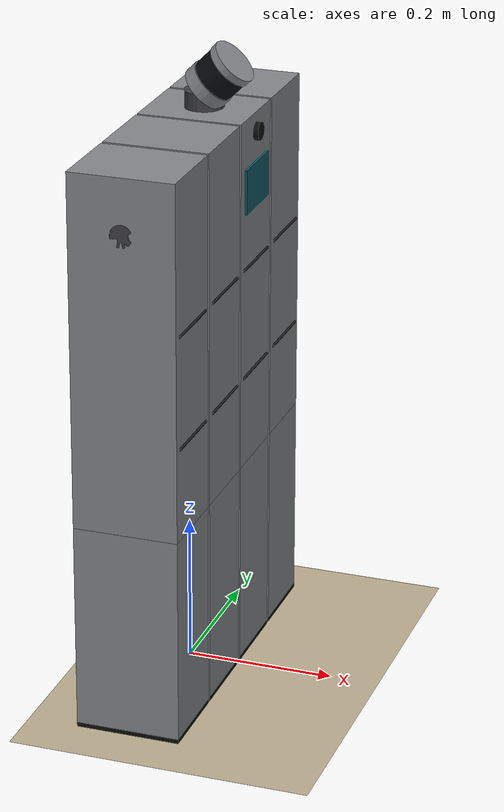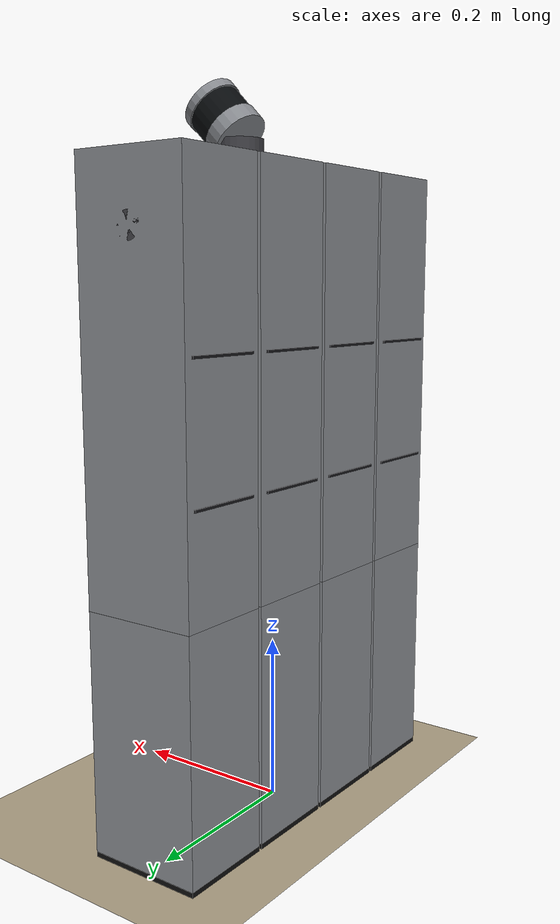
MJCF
<?xml version="1.0" ?>
<mujoco model="tars">
  <compiler angle="radian" autolimits="true"/>
  <option timestep="0.00141421" integrator="implicitfast"/>
  <visual>
    <global offwidth="1920" offheight="1440" azimuth="150" elevation="-15"/>
    <quality shadowsize="8192" offsamples="8"/>
    <headlight ambient="0.15 0.15 0.15" diffuse="0.3 0.3 0.3" specular="0.1 0.1 0.1"/>
    <map znear="0.01" haze="0.05"/>
  </visual>
  <asset>
    <texture type="skybox" builtin="gradient" rgb1="0.55 0.62 0.72" rgb2="0.08 0.09 0.12" width="512" height="512"/>
    <texture name="floor" type="2d" builtin="checker" rgb1="0.78 0.72 0.6" rgb2="0.7 0.64 0.53" width="512" height="512" mark="edge" markrgb="0.6 0.55 0.45"/>
    <material name="floor" texture="floor" texrepeat="8 8" reflectance="0.05"/>
    <material name="aluminum" rgba="0.52 0.53 0.55 1" specular="0.6" shininess="0.7" reflectance="0.15"/>
    <material name="sleeve" rgba="0.45 0.46 0.48 1" specular="0.5" shininess="0.6" reflectance="0.1"/>
    <material name="seam" rgba="0.08 0.08 0.09 1" specular="0.2" shininess="0.2" reflectance="0"/>
    <material name="rubber" rgba="0.05 0.05 0.05 1" specular="0.2" shininess="0.2" reflectance="0"/>
    <material name="display" rgba="0.05 0.35 0.4 1" specular="0.9" shininess="0.9" reflectance="0.3" emission="0.25"/>
    <material name="axle" rgba="0.25 0.25 0.27 1" specular="0.2" shininess="0.2" reflectance="0"/>
    <material name="glass" rgba="0.03 0.04 0.05 1" specular="0.9" shininess="0.9" reflectance="0.15"/>
  </asset>
  <default>
    <geom friction="1.2 0.01 0.0005" solref="0.00282843 1"/>
    <default class="visual">
      <geom contype="0" conaffinity="0" group="1"/>
    </default>
    <default class="collision">
      <geom group="0"/>
    </default>
    <default class="hinge">
      <joint type="hinge" axis="0 1 0" range="-3.14159 3.14159" damping="0.220971" armature="0.0015625"/>
      <motor ctrlrange="-37.5 37.5"/>
    </default>
    <default class="slide">
      <joint type="slide" axis="0 0 -1" range="0 0.35" damping="8.83883" armature="0.0125"/>
      <motor ctrlrange="-100 100"/>
    </default>
  </default>
  <worldbody>
    <light name="key" pos="3 -2 5" dir="-0.5 0.35 -1" diffuse="0.7 0.7 0.7" castshadow="true"/>
    <light name="fill" pos="-3 3 4" dir="0.5 -0.5 -1" diffuse="0.25 0.25 0.3" castshadow="false"/>
    <geom name="floor" type="plane" size="0 0 0.05" material="floor"/>
    <body name="base_link" pos="0 0 0.685">
      <freejoint name="root"/>
      <inertial pos="0 0 0" mass="0.5" diaginertia="0.00942917 5.625e-05 0.00942917"/>
      <geom name="axle" type="cylinder" size="0.015 0.2375" zaxis="0 1 0" material="axle" class="visual"/>
      <site name="imu" size="0.01"/>
      <body name="slab_1_upper" pos="0 0.18 0">
        <joint name="slab_1_hinge" class="hinge"/>
        <inertial pos="0 0 -0.1625" mass="1.25" diaginertia="0.0248802 0.0255443 0.00341927"/>
        <geom name="slab_1_upper_body" type="box" size="0.07 0.0575 0.2375" pos="0 0 -0.1625" material="aluminum" class="collision"/>
        <geom name="slab_1_seam_front_0" type="box" size="0.002 0.0475 0.0015" pos="0.07 0 -0.125" material="seam" class="visual"/>
        <geom name="slab_1_seam_back_0" type="box" size="0.002 0.0475 0.0015" pos="-0.07 0 -0.125" material="seam" class="visual"/>
        <geom name="slab_1_seam_front_1" type="box" size="0.002 0.0475 0.0015" pos="0.07 0 -0.275" material="seam" class="visual"/>
        <geom name="slab_1_seam_back_1" type="box" size="0.002 0.0475 0.0015" pos="-0.07 0 -0.275" material="seam" class="visual"/>
        <body name="slab_1_lower" pos="0 0 -0.4">
          <joint name="slab_1_slide" class="slide"/>
          <inertial pos="0 0 -0.1425" mass="0.5" diaginertia="0.00393542 0.00420104 0.00136771"/>
          <geom name="slab_1_lower_body" type="box" size="0.07 0.0575 0.1395" pos="0 0 -0.1395" material="aluminum" class="collision"/>
          <geom name="slab_1_foot_pad" type="box" size="0.07 0.0575 0.003" pos="0 0 -0.282" material="rubber" class="collision"/>
          <geom name="slab_1_sleeve" type="box" size="0.064 0.0515 0.18" pos="0 0 0.18" material="sleeve" class="visual"/>
          <site name="slab_1_foot" type="box" pos="0 0 -0.282" size="0.075 0.0625 0.013" rgba="0 0 0 0"/>
        </body>
      </body>
      <body name="slab_2_upper" pos="0 0.06 0">
        <joint name="slab_2_hinge" class="hinge"/>
        <inertial pos="0 0 -0.1625" mass="1.25" diaginertia="0.0248802 0.0255443 0.00341927"/>
        <geom name="slab_2_upper_body" type="box" size="0.07 0.0575 0.2375" pos="0 0 -0.1625" material="aluminum" class="collision"/>
        <geom name="slab_2_seam_front_0" type="box" size="0.002 0.0475 0.0015" pos="0.07 0 -0.125" material="seam" class="visual"/>
        <geom name="slab_2_seam_back_0" type="box" size="0.002 0.0475 0.0015" pos="-0.07 0 -0.125" material="seam" class="visual"/>
        <geom name="slab_2_seam_front_1" type="box" size="0.002 0.0475 0.0015" pos="0.07 0 -0.275" material="seam" class="visual"/>
        <geom name="slab_2_seam_back_1" type="box" size="0.002 0.0475 0.0015" pos="-0.07 0 -0.275" material="seam" class="visual"/>
        <geom name="slab_2_display" type="box" size="0.003 0.0425 0.03" pos="0.07 0 -0.02" material="display" class="visual"/>
        <geom name="lidar_pedestal" type="cylinder" size="0.026 0.0114905" pos="0 0 0.0864905" material="axle" class="visual"/>
        <frame pos="0 0 0.097981" quat="0.923879533 0 0.382683432 0">
          <geom name="lidar_base" type="cylinder" size="0.0325 0.0091" pos="0 0 0.0091" material="aluminum" class="visual"/>
          <geom name="lidar_window" type="cylinder" size="0.0312 0.01495" pos="0 0 0.03315" material="glass" class="visual"/>
          <geom name="lidar_crown" type="cylinder" size="0.0325 0.0052" pos="0 0 0.0533" material="aluminum" class="visual"/>
          <site name="lidar" pos="0 0 0.03315" size="0.01"/>
        </frame>
        <camera name="front_camera" pos="0.075 0 0.05" xyaxes="0 -1 0 0 0 1" fovy="70"/>
        <geom name="camera_lens" type="cylinder" size="0.012 0.004" pos="0.073 0 0.05" zaxis="1 0 0" material="rubber" class="visual"/>
        <body name="slab_2_lower" pos="0 0 -0.4">
          <joint name="slab_2_slide" class="slide"/>
          <inertial pos="0 0 -0.1425" mass="0.5" diaginertia="0.00393542 0.00420104 0.00136771"/>
          <geom name="slab_2_lower_body" type="box" size="0.07 0.0575 0.1395" pos="0 0 -0.1395" material="aluminum" class="collision"/>
          <geom name="slab_2_foot_pad" type="box" size="0.07 0.0575 0.003" pos="0 0 -0.282" material="rubber" class="collision"/>
          <geom name="slab_2_sleeve" type="box" size="0.064 0.0515 0.18" pos="0 0 0.18" material="sleeve" class="visual"/>
          <site name="slab_2_foot" type="box" pos="0 0 -0.282" size="0.075 0.0625 0.013" rgba="0 0 0 0"/>
        </body>
      </body>
      <body name="slab_3_upper" pos="0 -0.06 0">
        <joint name="slab_3_hinge" class="hinge"/>
        <inertial pos="0 0 -0.1625" mass="1.25" diaginertia="0.0248802 0.0255443 0.00341927"/>
        <geom name="slab_3_upper_body" type="box" size="0.07 0.0575 0.2375" pos="0 0 -0.1625" material="aluminum" class="collision"/>
        <geom name="slab_3_seam_front_0" type="box" size="0.002 0.0475 0.0015" pos="0.07 0 -0.125" material="seam" class="visual"/>
        <geom name="slab_3_seam_back_0" type="box" size="0.002 0.0475 0.0015" pos="-0.07 0 -0.125" material="seam" class="visual"/>
        <geom name="slab_3_seam_front_1" type="box" size="0.002 0.0475 0.0015" pos="0.07 0 -0.275" material="seam" class="visual"/>
        <geom name="slab_3_seam_back_1" type="box" size="0.002 0.0475 0.0015" pos="-0.07 0 -0.275" material="seam" class="visual"/>
        <body name="slab_3_lower" pos="0 0 -0.4">
          <joint name="slab_3_slide" class="slide"/>
          <inertial pos="0 0 -0.1425" mass="0.5" diaginertia="0.00393542 0.00420104 0.00136771"/>
          <geom name="slab_3_lower_body" type="box" size="0.07 0.0575 0.1395" pos="0 0 -0.1395" material="aluminum" class="collision"/>
          <geom name="slab_3_foot_pad" type="box" size="0.07 0.0575 0.003" pos="0 0 -0.282" material="rubber" class="collision"/>
          <geom name="slab_3_sleeve" type="box" size="0.064 0.0515 0.18" pos="0 0 0.18" material="sleeve" class="visual"/>
          <site name="slab_3_foot" type="box" pos="0 0 -0.282" size="0.075 0.0625 0.013" rgba="0 0 0 0"/>
        </body>
      </body>
      <body name="slab_4_upper" pos="0 -0.18 0">
        <joint name="slab_4_hinge" class="hinge"/>
        <inertial pos="0 0 -0.1625" mass="1.25" diaginertia="0.0248802 0.0255443 0.00341927"/>
        <geom name="slab_4_upper_body" type="box" size="0.07 0.0575 0.2375" pos="0 0 -0.1625" material="aluminum" class="collision"/>
        <geom name="slab_4_seam_front_0" type="box" size="0.002 0.0475 0.0015" pos="0.07 0 -0.125" material="seam" class="visual"/>
        <geom name="slab_4_seam_back_0" type="box" size="0.002 0.0475 0.0015" pos="-0.07 0 -0.125" material="seam" class="visual"/>
        <geom name="slab_4_seam_front_1" type="box" size="0.002 0.0475 0.0015" pos="0.07 0 -0.275" material="seam" class="visual"/>
        <geom name="slab_4_seam_back_1" type="box" size="0.002 0.0475 0.0015" pos="-0.07 0 -0.275" material="seam" class="visual"/>
        <body name="slab_4_lower" pos="0 0 -0.4">
          <joint name="slab_4_slide" class="slide"/>
          <inertial pos="0 0 -0.1425" mass="0.5" diaginertia="0.00393542 0.00420104 0.00136771"/>
          <geom name="slab_4_lower_body" type="box" size="0.07 0.0575 0.1395" pos="0 0 -0.1395" material="aluminum" class="collision"/>
          <geom name="slab_4_foot_pad" type="box" size="0.07 0.0575 0.003" pos="0 0 -0.282" material="rubber" class="collision"/>
          <geom name="slab_4_sleeve" type="box" size="0.064 0.0515 0.18" pos="0 0 0.18" material="sleeve" class="visual"/>
          <site name="slab_4_foot" type="box" pos="0 0 -0.282" size="0.075 0.0625 0.013" rgba="0 0 0 0"/>
        </body>
      </body>
    </body>
  </worldbody>
  <actuator>
    <motor name="slab_1_hinge" joint="slab_1_hinge" class="hinge"/>
    <motor name="slab_1_slide" joint="slab_1_slide" class="slide"/>
    <motor name="slab_2_hinge" joint="slab_2_hinge" class="hinge"/>
    <motor name="slab_2_slide" joint="slab_2_slide" class="slide"/>
    <motor name="slab_3_hinge" joint="slab_3_hinge" class="hinge"/>
    <motor name="slab_3_slide" joint="slab_3_slide" class="slide"/>
    <motor name="slab_4_hinge" joint="slab_4_hinge" class="hinge"/>
    <motor name="slab_4_slide" joint="slab_4_slide" class="slide"/>
  </actuator>
  <sensor>
    <framequat name="imu_quat" objtype="site" objname="imu"/>
    <gyro name="imu_gyro" site="imu"/>
    <accelerometer name="imu_acc" site="imu"/>
    <touch name="slab_1_foot_touch" site="slab_1_foot"/>
    <touch name="slab_2_foot_touch" site="slab_2_foot"/>
    <touch name="slab_3_foot_touch" site="slab_3_foot"/>
    <touch name="slab_4_foot_touch" site="slab_4_foot"/>
  </sensor>
  <keyframe>
    <key name="stand" qpos="0 0 0.685 1 0 0 0 0 0 0 0 0 0 0 0"/>
    <key name="stride" qpos="0 0 0.709003 1 0 0 0 0.35 0.04421 -0.35 0.04421 -0.35 0.04421 0.35 0.04421"/>
    <key name="wheel" qpos="0 0 0.685 1 0 0 0 0 0 3.14159 0 1.5708 0 -1.5708 0"/>
  </keyframe>
</mujoco>
